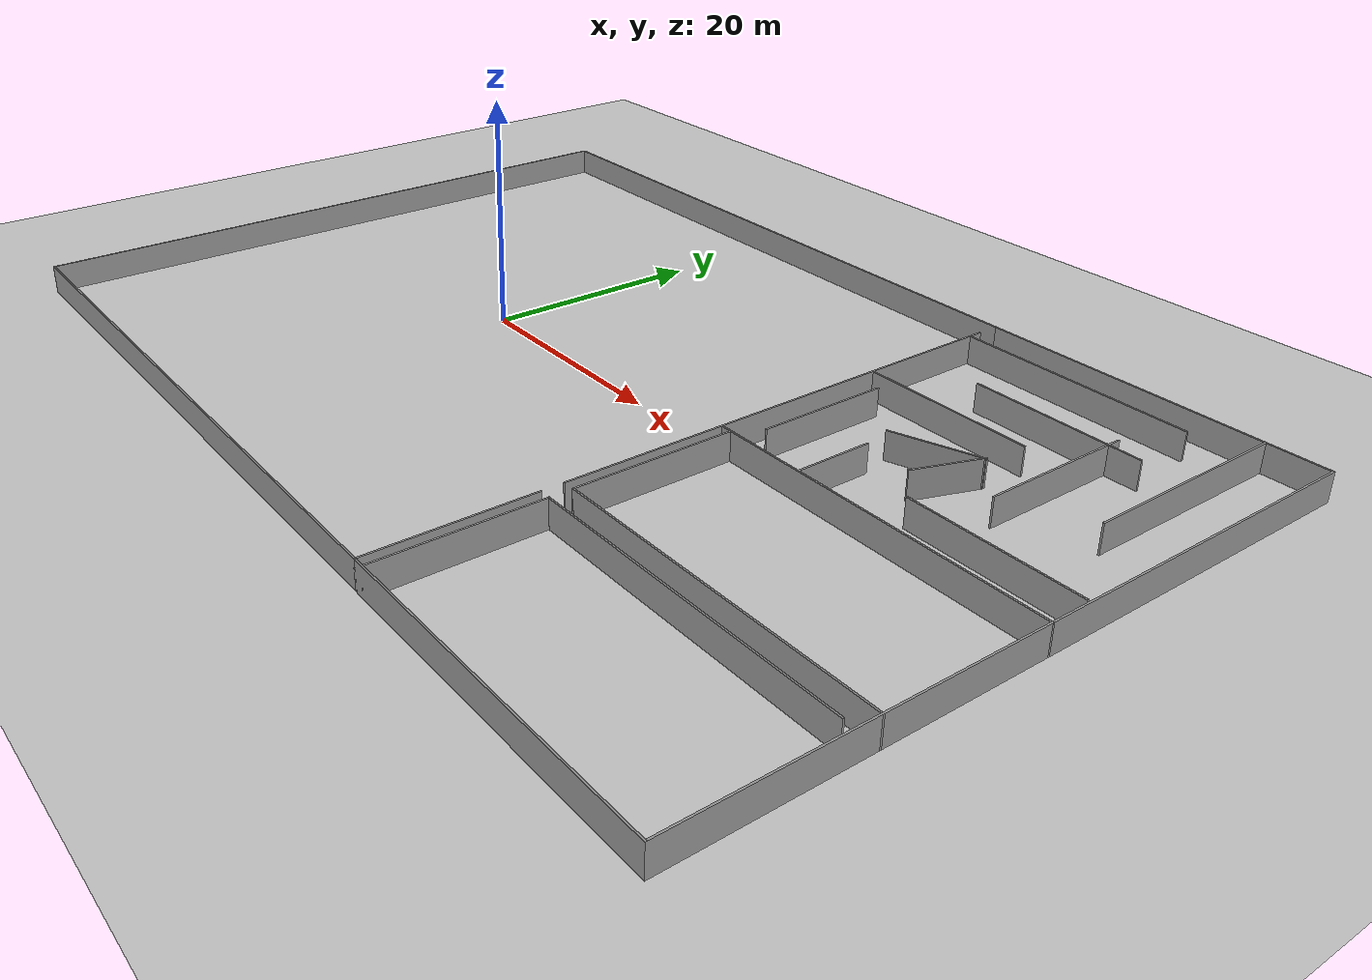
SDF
<sdf version="1.7">
 <world name="default">
  <light name="sun" type="directional">
   <pose>0 0 10 0 -0 0</pose>
   <diffuse>0.8 0.8 0.8 1</diffuse>
   <specular>0.2 0.2 0.2 1</specular>
   <attenuation>
    <range>1000</range>
    <constant>0.9</constant>
    <linear>0.01</linear>
    <quadratic>0.001</quadratic>
   </attenuation>
   <direction>-0.5 0.1 -0.9</direction>
   <spot><inner_angle>0</inner_angle><outer_angle>0</outer_angle><falloff>0</falloff></spot>
  </light>
  <model name="ground_plane">
   <static>1</static>
   <link name="link">
    <collision name="collision">
     <geometry><plane><normal>0 0 1</normal><size>100 100</size></plane></geometry>
     <surface><friction><ode><mu>100</mu><mu2>50</mu2></ode></friction></surface>
    </collision>
    <visual name="visual">
     <cast_shadows>0</cast_shadows>
     <geometry><plane><normal>0 0 1</normal><size>100 100</size></plane></geometry>
     <material>
      <script><uri>file://media/materials/scripts/gazebo.material</uri><name>Gazebo/Grey</name></script>
     </material>
    </visual>
   </link>
  </model>
  <gravity>0 0 -9.8</gravity>
  <magnetic_field>6e-06 2.3e-05 -4.2e-05</magnetic_field>
  <atmosphere type="adiabatic"/>
  <physics type="ode">
   <max_step_size>0.001</max_step_size>
   <real_time_factor>1</real_time_factor>
   <real_time_update_rate>1000</real_time_update_rate>
  </physics>
  <scene><ambient>0.4 0.4 0.4 1</ambient><background>0.7 0.7 0.7 1</background><shadows>1</shadows></scene>
  <audio><device>default</device></audio>
  <spherical_coordinates>
   <surface_model>EARTH_WGS84</surface_model>
   <latitude_deg>0</latitude_deg>
   <longitude_deg>0</longitude_deg>
   <elevation>0</elevation>
   <heading_deg>0</heading_deg>
  </spherical_coordinates>
  <model name="map4">
   <pose>15 -0 0 0 -0 0</pose>
   <link name="Wall_18">
    <collision name="Wall_18_Collision">
     <geometry><box><size>42.15 0.15 2.5</size></box></geometry>
     <pose>0 0 1.25 0 -0 0</pose>
    </collision>
    <visual name="Wall_18_Visual">
     <pose>0 0 1.25 0 -0 0</pose>
     <geometry><box><size>42.15 0.15 2.5</size></box></geometry>
     <material>
      <script><uri>file://media/materials/scripts/gazebo.material</uri><name>Gazebo/Grey</name></script>
      <ambient>1 1 1 1</ambient>
     </material>
     <meta><layer>0</layer></meta>
    </visual>
    <pose>15 7 0 0 -0 -1.5708</pose>
   </link>
   <link name="Wall_20">
    <collision name="Wall_20_Collision">
     <geometry><box><size>60.15 0.15 2.5</size></box></geometry>
     <pose>0 0 1.25 0 -0 0</pose>
    </collision>
    <visual name="Wall_20_Visual">
     <pose>0 0 1.25 0 -0 0</pose>
     <geometry><box><size>60.15 0.15 2.5</size></box></geometry>
     <material>
      <script><uri>file://media/materials/scripts/gazebo.material</uri><name>Gazebo/Grey</name></script>
      <ambient>1 1 1 1</ambient>
     </material>
     <meta><layer>0</layer></meta>
    </visual>
    <pose>-15 -30 0 0 -0 0</pose>
   </link>
   <link name="Wall_22">
    <collision name="Wall_22_Collision">
     <geometry><box><size>60.15 0.15 2.5</size></box></geometry>
     <pose>0 0 1.25 0 -0 0</pose>
    </collision>
    <visual name="Wall_22_Visual">
     <pose>0 0 1.25 0 -0 0</pose>
     <geometry><box><size>60.15 0.15 2.5</size></box></geometry>
     <material>
      <script><uri>file://media/materials/scripts/gazebo.material</uri><name>Gazebo/Grey</name></script>
      <ambient>1 1 1 1</ambient>
     </material>
     <meta><layer>0</layer></meta>
    </visual>
    <pose>-15 30 0 0 -0 0</pose>
   </link>
   <link name="Wall_24">
    <collision name="Wall_24_Collision">
     <geometry><box><size>30.15 0.15 2.5</size></box></geometry>
     <pose>0 0 1.25 0 -0 0</pose>
    </collision>
    <visual name="Wall_24_Visual">
     <pose>0 0 1.25 0 -0 0</pose>
     <geometry><box><size>30.15 0.15 2.5</size></box></geometry>
     <material>
      <script><uri>file://media/materials/scripts/gazebo.material</uri><name>Gazebo/Grey</name></script>
      <ambient>1 1 1 1</ambient>
     </material>
     <meta><layer>0</layer></meta>
    </visual>
    <pose>30 -30 0 0 -0 0</pose>
   </link>
   <link name="Wall_26">
    <collision name="Wall_26_Collision">
     <geometry><box><size>30.15 0.15 2.5</size></box></geometry>
     <pose>0 0 1.25 0 -0 0</pose>
    </collision>
    <visual name="Wall_26_Visual">
     <pose>0 0 1.25 0 -0 0</pose>
     <geometry><box><size>30.15 0.15 2.5</size></box></geometry>
     <material>
      <script><uri>file://media/materials/scripts/gazebo.material</uri><name>Gazebo/Grey</name></script>
      <ambient>1 1 1 1</ambient>
     </material>
     <meta><layer>0</layer></meta>
    </visual>
    <pose>45 -15 0 0 -0 1.5708</pose>
   </link>
   <link name="Wall_28">
    <collision name="Wall_28_Collision">
     <geometry><box><size>30.15 0.15 2.5</size></box></geometry>
     <pose>0 0 1.25 0 -0 0</pose>
    </collision>
    <visual name="Wall_28_Visual">
     <pose>0 0 1.25 0 -0 0</pose>
     <geometry><box><size>30.15 0.15 2.5</size></box></geometry>
     <material>
      <script><uri>file://media/materials/scripts/gazebo.material</uri><name>Gazebo/Grey</name></script>
      <ambient>1 1 1 1</ambient>
     </material>
     <meta><layer>0</layer></meta>
    </visual>
    <pose>30 0 0 0 -0 3.14159</pose>
   </link>
   <link name="Wall_31">
    <collision name="Wall_31_Collision">
     <geometry><box><size>14.15 0.15 2.5</size></box></geometry>
     <pose>0 0 1.25 0 -0 0</pose>
    </collision>
    <visual name="Wall_31_Visual">
     <pose>0 0 1.25 0 -0 0</pose>
     <geometry><box><size>14.15 0.15 2.5</size></box></geometry>
     <material>
      <script><uri>file://media/materials/scripts/gazebo.material</uri><name>Gazebo/Grey</name></script>
      <ambient>1 1 1 1</ambient>
     </material>
     <meta><layer>0</layer></meta>
    </visual>
    <pose>16 -23 0 0 -0 1.5708</pose>
   </link>
   <link name="Wall_33">
    <collision name="Wall_33_Collision">
     <geometry><box><size>14.15 0.15 2.5</size></box></geometry>
     <pose>0 0 1.25 0 -0 0</pose>
    </collision>
    <visual name="Wall_33_Visual">
     <pose>0 0 1.25 0 -0 0</pose>
     <geometry><box><size>14.15 0.15 2.5</size></box></geometry>
     <material>
      <script><uri>file://media/materials/scripts/gazebo.material</uri><name>Gazebo/Grey</name></script>
      <ambient>1 1 1 1</ambient>
     </material>
     <meta><layer>0</layer></meta>
    </visual>
    <pose>16 -7 0 0 -0 -1.5708</pose>
   </link>
   <link name="Wall_35">
    <collision name="Wall_35_Collision">
     <geometry><box><size>29.15 0.15 2.5</size></box></geometry>
     <pose>0 0 1.25 0 -0 0</pose>
    </collision>
    <visual name="Wall_35_Visual">
     <pose>0 0 1.25 0 -0 0</pose>
     <geometry><box><size>29.15 0.15 2.5</size></box></geometry>
     <material>
      <script><uri>file://media/materials/scripts/gazebo.material</uri><name>Gazebo/Grey</name></script>
      <ambient>1 1 1 1</ambient>
     </material>
     <meta><layer>0</layer></meta>
    </visual>
    <pose>30.5 -14 0 0 -0 0</pose>
   </link>
   <link name="Wall_37">
    <collision name="Wall_37_Collision">
     <geometry><box><size>28.15 0.15 2.5</size></box></geometry>
     <pose>0 0 1.25 0 -0 0</pose>
    </collision>
    <visual name="Wall_37_Visual">
     <pose>0 0 1.25 0 -0 0</pose>
     <geometry><box><size>28.15 0.15 2.5</size></box></geometry>
     <material>
      <script><uri>file://media/materials/scripts/gazebo.material</uri><name>Gazebo/Grey</name></script>
      <ambient>1 1 1 1</ambient>
     </material>
     <meta><layer>0</layer></meta>
    </visual>
    <pose>30 -16 0 0 -0 0</pose>
   </link>
   <link name="Wall_39">
    <collision name="Wall_39_Collision">
     <geometry><box><size>14.15 0.15 2.5</size></box></geometry>
     <pose>0 0 1.25 0 -0 0</pose>
    </collision>
    <visual name="Wall_39_Visual">
     <pose>0 0 1.25 0 -0 0</pose>
     <geometry><box><size>14.15 0.15 2.5</size></box></geometry>
     <material>
      <script><uri>file://media/materials/scripts/gazebo.material</uri><name>Gazebo/Grey</name></script>
      <ambient>1 1 1 1</ambient>
     </material>
     <meta><layer>0</layer></meta>
    </visual>
    <pose>15 -23 0 0 -0 -1.5708</pose>
   </link>
   <link name="Wall_41">
    <collision name="Wall_41_Collision">
     <geometry><box><size>30.15 0.15 2.5</size></box></geometry>
     <pose>0 0 1.25 0 -0 0</pose>
    </collision>
    <visual name="Wall_41_Visual">
     <pose>0 0 1.25 0 -0 0</pose>
     <geometry><box><size>30.15 0.15 2.5</size></box></geometry>
     <material>
      <script><uri>file://media/materials/scripts/gazebo.material</uri><name>Gazebo/Grey</name></script>
      <ambient>1 1 1 1</ambient>
     </material>
     <meta><layer>0</layer></meta>
    </visual>
    <pose>30 30 0 0 -0 0</pose>
   </link>
   <link name="Wall_42">
    <collision name="Wall_42_Collision">
     <geometry><box><size>30.15 0.15 2.5</size></box></geometry>
     <pose>0 0 1.25 0 -0 0</pose>
    </collision>
    <visual name="Wall_42_Visual">
     <pose>0 0 1.25 0 -0 0</pose>
     <geometry><box><size>30.15 0.15 2.5</size></box></geometry>
     <material>
      <script><uri>file://media/materials/scripts/gazebo.material</uri><name>Gazebo/Grey</name></script>
      <ambient>1 1 1 1</ambient>
     </material>
     <meta><layer>0</layer></meta>
    </visual>
    <pose>45 15 0 0 -0 -1.5708</pose>
   </link>
   <link name="Wall_46">
    <collision name="Wall_46_Collision">
     <geometry><box><size>11.5 0.15 2.5</size></box></geometry>
     <pose>0 0 1.25 0 -0 0</pose>
    </collision>
    <visual name="Wall_46_Visual">
     <pose>0 0 1.25 0 -0 0</pose>
     <geometry><box><size>11.5 0.15 2.5</size></box></geometry>
     <material>
      <script><uri>file://media/materials/scripts/gazebo.material</uri><name>Gazebo/Grey</name></script>
      <ambient>1 1 1 1</ambient>
     </material>
     <meta><layer>0</layer></meta>
    </visual>
    <pose>17.3244 8.00281 0 0 -0 1.5708</pose>
   </link>
   <link name="Wall_5">
    <collision name="Wall_5_Collision">
     <geometry><box><size>60.15 0.15 2.5</size></box></geometry>
     <pose>0 0 1.25 0 -0 0</pose>
    </collision>
    <visual name="Wall_5_Visual">
     <pose>0 0 1.25 0 -0 0</pose>
     <geometry><box><size>60.15 0.15 2.5</size></box></geometry>
     <material>
      <script><uri>file://media/materials/scripts/gazebo.material</uri><name>Gazebo/Grey</name></script>
      <ambient>1 1 1 1</ambient>
     </material>
     <meta><layer>0</layer></meta>
    </visual>
    <pose>-45 0 0 0 -0 -1.5708</pose>
   </link>
   <link name="Wall_52">
    <collision name="Wall_52_Collision">
     <geometry><box><size>15 0.15 2.5</size></box></geometry>
     <pose>0 0 1.25 0 -0 0</pose>
    </collision>
    <visual name="Wall_52_Visual">
     <pose>0 0 1.25 0 -0 0</pose>
     <geometry><box><size>15 0.15 2.5</size></box></geometry>
     <material>
      <script><uri>file://media/materials/scripts/gazebo.material</uri><name>Gazebo/Grey</name></script>
      <ambient>1 1 1 1</ambient>
     </material>
     <meta><layer>0</layer></meta>
    </visual>
    <pose>22.6035 15.526 0 0 -0 0</pose>
   </link>
   <link name="Wall_54">
    <collision name="Wall_54_Collision">
     <geometry><box><size>6.75 0.15 2.5</size></box></geometry>
     <pose>0 0 1.25 0 -0 0</pose>
    </collision>
    <visual name="Wall_54_Visual">
     <pose>0 0 1.25 0 -0 0</pose>
     <geometry><box><size>6.75 0.15 2.5</size></box></geometry>
     <material>
      <script><uri>file://media/materials/scripts/gazebo.material</uri><name>Gazebo/Grey</name></script>
      <ambient>1 1 1 1</ambient>
     </material>
     <meta><layer>0</layer></meta>
    </visual>
    <pose>23.1751 3.411 0 0 -0 1.5708</pose>
   </link>
   <link name="Wall_59">
    <collision name="Wall_59_Collision">
     <geometry><box><size>13.5 0.15 2.5</size></box></geometry>
     <pose>0 0 1.25 0 -0 0</pose>
    </collision>
    <visual name="Wall_59_Visual">
     <pose>0 0 1.25 0 -0 0</pose>
     <geometry><box><size>13.5 0.15 2.5</size></box></geometry>
     <material>
      <script><uri>file://media/materials/scripts/gazebo.material</uri><name>Gazebo/Grey</name></script>
      <ambient>1 1 1 1</ambient>
     </material>
     <meta><layer>0</layer></meta>
    </visual>
    <pose>33.4394 15.0286 0 0 -0 -1.5708</pose>
   </link>
   <link name="Wall_61">
    <collision name="Wall_61_Collision">
     <geometry><box><size>14.75 0.15 2.5</size></box></geometry>
     <pose>0 0 1.25 0 -0 0</pose>
    </collision>
    <visual name="Wall_61_Visual">
     <pose>0 0 1.25 0 -0 0</pose>
     <geometry><box><size>14.75 0.15 2.5</size></box></geometry>
     <material>
      <script><uri>file://media/materials/scripts/gazebo.material</uri><name>Gazebo/Grey</name></script>
      <ambient>1 1 1 1</ambient>
     </material>
     <meta><layer>0</layer></meta>
    </visual>
    <pose>37.3932 3.55697 0 0 -0 0</pose>
   </link>
   <link name="Wall_63">
    <collision name="Wall_63_Collision">
     <geometry><box><size>18.5 0.15 2.5</size></box></geometry>
     <pose>0 0 1.25 0 -0 0</pose>
    </collision>
    <visual name="Wall_63_Visual">
     <pose>0 0 1.25 0 -0 0</pose>
     <geometry><box><size>18.5 0.15 2.5</size></box></geometry>
     <material>
      <script><uri>file://media/materials/scripts/gazebo.material</uri><name>Gazebo/Grey</name></script>
      <ambient>1 1 1 1</ambient>
     </material>
     <meta><layer>0</layer></meta>
    </visual>
    <pose>39.8638 20.7759 0 0 -0 -1.5708</pose>
   </link>
   <link name="Wall_65">
    <collision name="Wall_65_Collision">
     <geometry><box><size>20.5 0.15 2.5</size></box></geometry>
     <pose>0 0 1.25 0 -0 0</pose>
    </collision>
    <visual name="Wall_65_Visual">
     <pose>0 0 1.25 0 -0 0</pose>
     <geometry><box><size>20.5 0.15 2.5</size></box></geometry>
     <material>
      <script><uri>file://media/materials/scripts/gazebo.material</uri><name>Gazebo/Grey</name></script>
      <ambient>1 1 1 1</ambient>
     </material>
     <meta><layer>0</layer></meta>
    </visual>
    <pose>25.339 26.8516 0 0 -0 0</pose>
   </link>
   <link name="Wall_67">
    <collision name="Wall_67_Collision">
     <geometry><box><size>15 0.15 2.5</size></box></geometry>
     <pose>0 0 1.25 0 -0 0</pose>
    </collision>
    <visual name="Wall_67_Visual">
     <pose>0 0 1.25 0 -0 0</pose>
     <geometry><box><size>15 0.15 2.5</size></box></geometry>
     <material>
      <script><uri>file://media/materials/scripts/gazebo.material</uri><name>Gazebo/Grey</name></script>
      <ambient>1 1 1 1</ambient>
     </material>
     <meta><layer>0</layer></meta>
    </visual>
    <pose>28.7674 20.5598 0 0 -0 3.14159</pose>
   </link>
   <link name="Wall_69">
    <collision name="Wall_69_Collision">
     <geometry><box><size>7.59887 0.15 2.5</size></box></geometry>
     <pose>0 0 1.25 0 -0 0</pose>
    </collision>
    <visual name="Wall_69_Visual">
     <pose>0 0 1.25 0 -0 0</pose>
     <geometry><box><size>7.59887 0.15 2.5</size></box></geometry>
     <material>
      <script><uri>file://media/materials/scripts/gazebo.material</uri><name>Gazebo/Grey</name></script>
      <ambient>1 1 1 1</ambient>
     </material>
     <meta><layer>0</layer></meta>
    </visual>
    <pose>26.1018 10.5857 0 0 -0 0.353233</pose>
   </link>
   <link name="Wall_70">
    <collision name="Wall_70_Collision">
     <geometry><box><size>6.16429 0.15 2.5</size></box></geometry>
     <pose>0 0 1.25 0 -0 0</pose>
    </collision>
    <visual name="Wall_70_Visual">
     <pose>0 0 1.25 0 -0 0</pose>
     <geometry><box><size>6.16429 0.15 2.5</size></box></geometry>
     <material>
      <script><uri>file://media/materials/scripts/gazebo.material</uri><name>Gazebo/Grey</name></script>
      <ambient>1 1 1 1</ambient>
     </material>
     <meta><layer>0</layer></meta>
    </visual>
    <pose>28.5942 9.18199 0 0 -0 -1.91053</pose>
   </link>
   <static>1</static>
  </model>
 </world>
</sdf>
